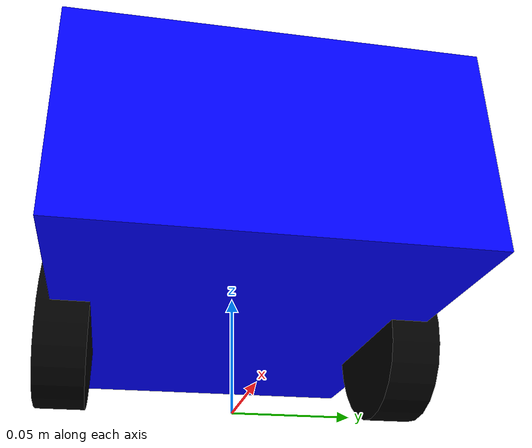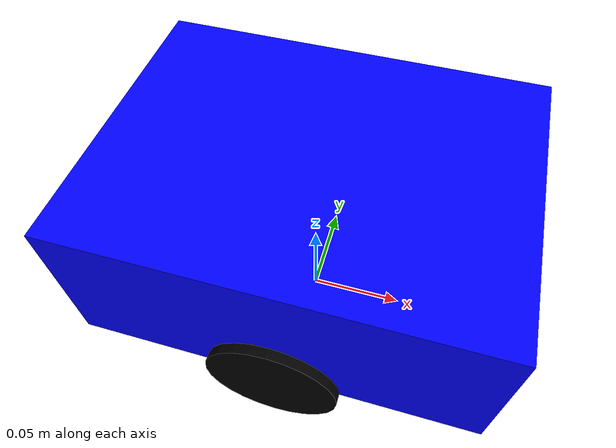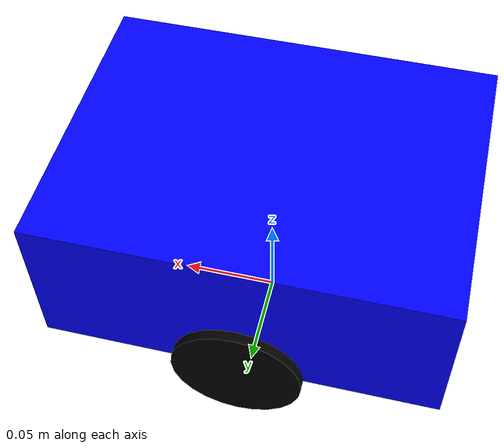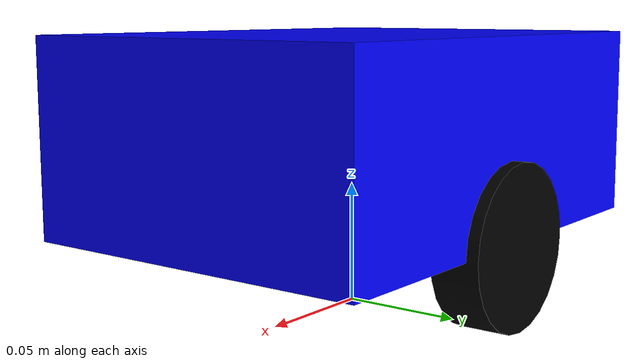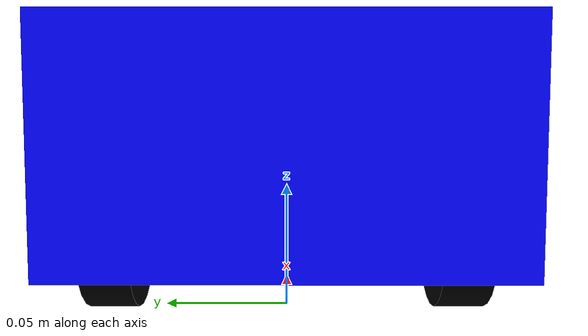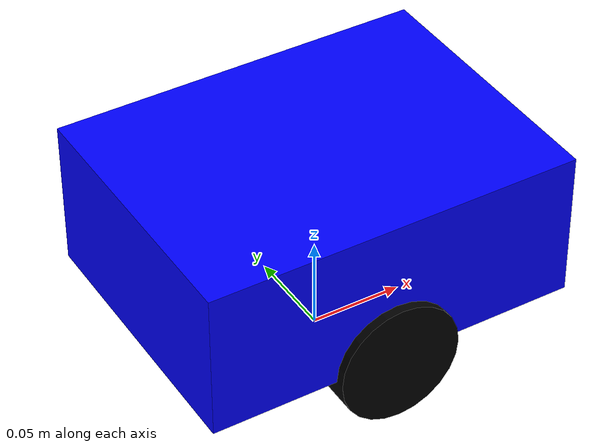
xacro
<?xml version="1.0"?>
<robot name="bumperbot" xmlns:xacro="http://ros.org/wiki/xacro">

  <xacro:arg name="imu_topic" default="imu"/>
  <xacro:arg name="imu_plugin_filename" default="libgazebo_ros_imu_sensor.so"/>

  <link name="base_footprint"/>

  <link name="base_link">
    <inertial>
      <origin xyz="0 0 0.04" rpy="0 0 0" />
      <mass value="0.8"/>
      <inertia ixx="0.02" ixy="0" ixz="0" iyy="0.02" iyz="0" izz="0.02" />
    </inertial>
    <visual>
      <origin xyz="0 0 0.04" rpy="0 0 0" />
      <geometry>
        <box size="0.2 0.15 0.08"/>
      </geometry>
      <material name="blue"><color rgba="0 0 1 1"/></material>
    </visual>
    <collision>
      <origin xyz="0 0 0.04" rpy="0 0 0" />
      <geometry>
        <box size="0.2 0.15 0.08"/>
      </geometry>
    </collision>
  </link>

  <joint name="base_joint" type="fixed">
    <parent link="base_footprint"/>
    <child link="base_link" />
    <origin xyz="0 0 0.033" rpy="0 0 0"/>
  </joint>

  <link name="wheel_right_link">
    <visual>
      <geometry>
        <cylinder radius="0.033" length="0.02"/>
      </geometry>
      <material name="black"><color rgba="0 0 0 1"/></material>
    </visual>
    <collision>
      <geometry>
        <cylinder radius="0.033" length="0.02"/>
      </geometry>
    </collision>
    <inertial>
      <mass value="0.05"/>
      <inertia ixx="0.0001" ixy="0" ixz="0" iyy="0.0001" iyz="0" izz="0.0001"/>
    </inertial>
  </link>

  <joint name="wheel_right_joint" type="continuous">
    <origin xyz="0 -0.07 0" rpy="1.57 0 0" />
    <parent link="base_link" />
    <child link="wheel_right_link" />
    <axis xyz="0 0 1" />
  </joint>

  <gazebo reference="wheel_right_link">
    <mu1>1.0</mu1>
    <mu2>1.0</mu2>
    <kp>1000000.0</kp>
    <kd>10.0</kd>
    <minDepth>0.001</minDepth>
    <maxVel>0.1</maxVel>
    <fdir1>1 0 0</fdir1>
  </gazebo>

  <link name="wheel_left_link">
    <visual>
      <geometry>
        <cylinder radius="0.033" length="0.02"/>
      </geometry>
      <material name="black"><color rgba="0 0 0 1"/></material>
    </visual>
    <collision>
      <geometry>
        <cylinder radius="0.033" length="0.02"/>
      </geometry>
    </collision>
    <inertial>
      <mass value="0.05"/>
      <inertia ixx="0.0001" ixy="0" ixz="0" iyy="0.0001" iyz="0" izz="0.0001"/>
    </inertial>
  </link>

  <joint name="wheel_left_joint" type="continuous">
    <origin xyz="0 0.07 0" rpy="1.57 0 0" />
    <parent link="base_link" />
    <child link="wheel_left_link" />
    <axis xyz="0 0 1" />
  </joint>

  <gazebo reference="wheel_left_link">
    <mu1>1.0</mu1>
    <mu2>1.0</mu2>
    <kp>1000000.0</kp>
    <kd>10.0</kd>
    <minDepth>0.001</minDepth>
    <maxVel>0.1</maxVel>
    <fdir1>1 0 0</fdir1>
  </gazebo>

  <link name="imu_link">
    <inertial>
      <origin xyz="-0.00552433659106688 0.000168210391520346 0.000514000497342681" rpy="0 0 0" />
      <mass value="0.000528415362211671" />
      <inertia ixx="1.46176048428261E-08" ixy="1.40015117949421E-10" ixz="-1.99633872937403E-12"
               iyy="8.59662482954888E-09" iyz="7.52375112767959E-12" izz="2.30279421279312E-08" />
    </inertial>
    <visual>
      <origin xyz="0 0 0" rpy="0 0 0" />
      <geometry>
        <mesh filename="package://bumperbot_description/meshes/imu_link.STL" />
      </geometry>
    </visual>
    <collision>
      <origin xyz="0 0 0" rpy="0 0 0" />
      <geometry>
        <mesh filename="package://bumperbot_description/meshes/imu_link.STL" />
      </geometry>
    </collision>
  </link>

  <joint name="imu_joint" type="fixed">
    <origin xyz="0 0 0.0698986241758014" rpy="0 0 0" />
    <parent link="base_link" />
    <child link="imu_link" />
  </joint>

  <gazebo reference="imu_link">
    <sensor name="imu" type="imu">
      <always_on>true</always_on>
      <update_rate>100</update_rate>
      <topic>$(arg imu_topic)</topic>
      <imu>
        <angular_velocity>
          <x>
            <noise type="gaussian">
              <mean>0.0</mean>
              <stddev>2e-4</stddev>
            </noise>
          </x>
          <y>
            <noise type="gaussian">
              <mean>0.0</mean>
              <stddev>2e-4</stddev>
            </noise>
          </y>
          <z>
            <noise type="gaussian">
              <mean>0.0</mean>
              <stddev>2e-4</stddev>
            </noise>
          </z>
        </angular_velocity>
        <linear_acceleration>
          <x>
            <noise type="gaussian">
              <mean>0.0</mean>
              <stddev>1.7e-2</stddev>
            </noise>
          </x>
          <y>
            <noise type="gaussian">
              <mean>0.0</mean>
              <stddev>1.7e-2</stddev>
            </noise>
          </y>
          <z>
            <noise type="gaussian">
              <mean>0.0</mean>
              <stddev>1.7e-2</stddev>
            </noise>
          </z>
        </linear_acceleration>
      </imu>
      <plugin name="imu_plugin" filename="$(arg imu_plugin_filename)">
        <ros>
          <remapping>~/imu:=$(arg imu_topic)</remapping>
        </ros>
        <frame_name>imu_link</frame_name>
      </plugin>
    </sensor>
  </gazebo>

  <ros2_control name="BumperBotSystem" type="system">
    <hardware>
      <plugin>gazebo_ros2_control/GazeboSystem</plugin>
    </hardware>
    <joint name="wheel_right_joint">
      <command_interface name="velocity"/>
      <state_interface name="position"/>
      <state_interface name="velocity"/>
    </joint>
    <joint name="wheel_left_joint">
      <command_interface name="velocity"/>
      <state_interface name="position"/>
      <state_interface name="velocity"/>
    </joint>
  </ros2_control>

  <gazebo>
    <plugin name="gazebo_ros2_control" filename="libgazebo_ros2_control.so">
      <parameters>$(find bumperbot_controller)/config/bumperbot_controllers.yaml</parameters>
    </plugin>
  </gazebo>

</robot>
